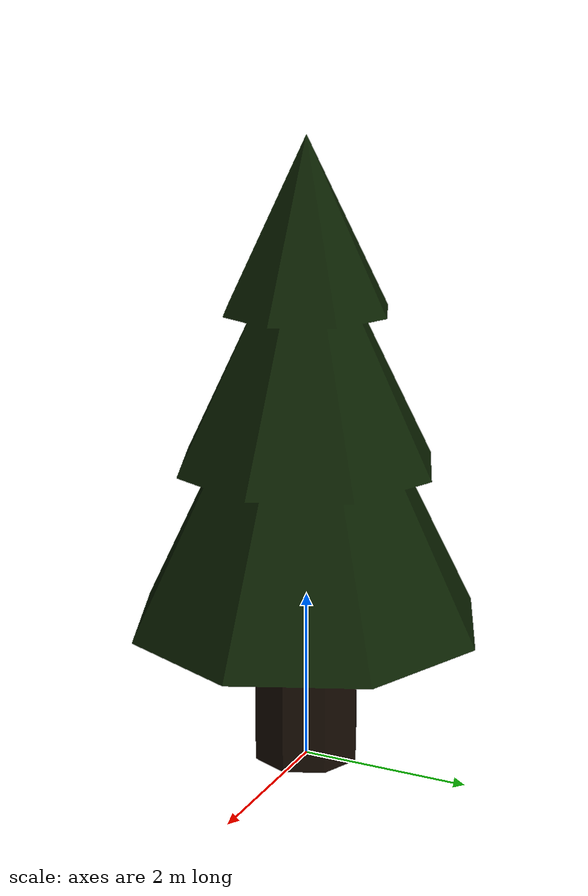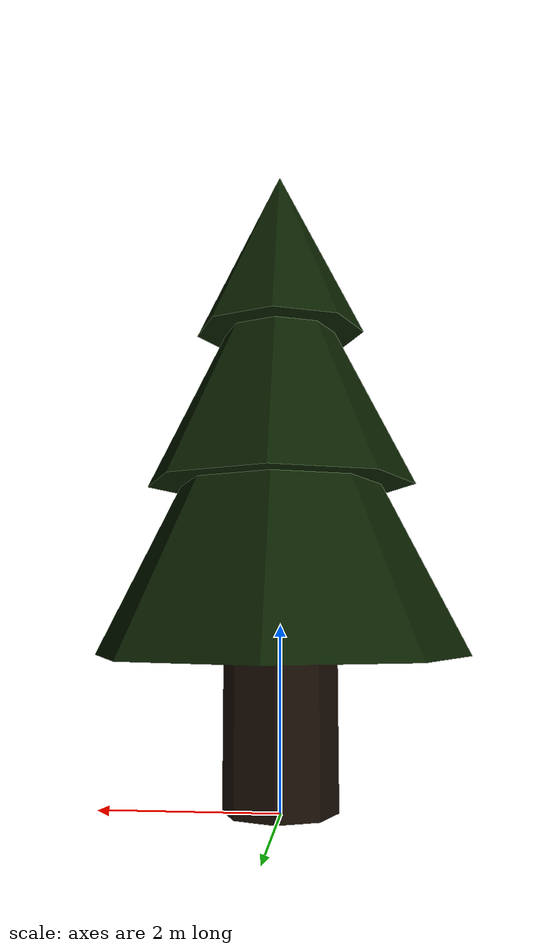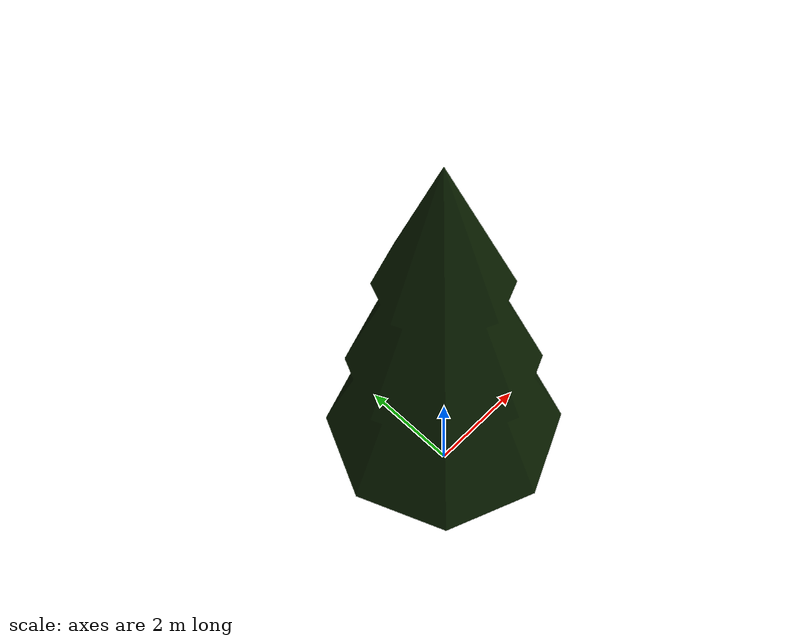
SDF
<sdf version="1.7">
<model name="lowpolytree_1">
    <static>true</static>
    <link name="lowpolytree_1">
        <pose>0 0 0 0 0 0</pose>
        <collision name="lowpolytree_1_collision">
            <geometry>
                <mesh>
                    <uri>model://lowpolytree_1/meshes/lowpolytree_1.dae</uri>
                </mesh>
            </geometry>
        </collision>
        <visual name="lowpolytree_1_visual">
            <geometry>
                <mesh>
                    <uri>model://lowpolytree_1/meshes/lowpolytree_1.dae</uri>
                </mesh>
            </geometry>
        </visual>
    </link>
</model>
</sdf>
